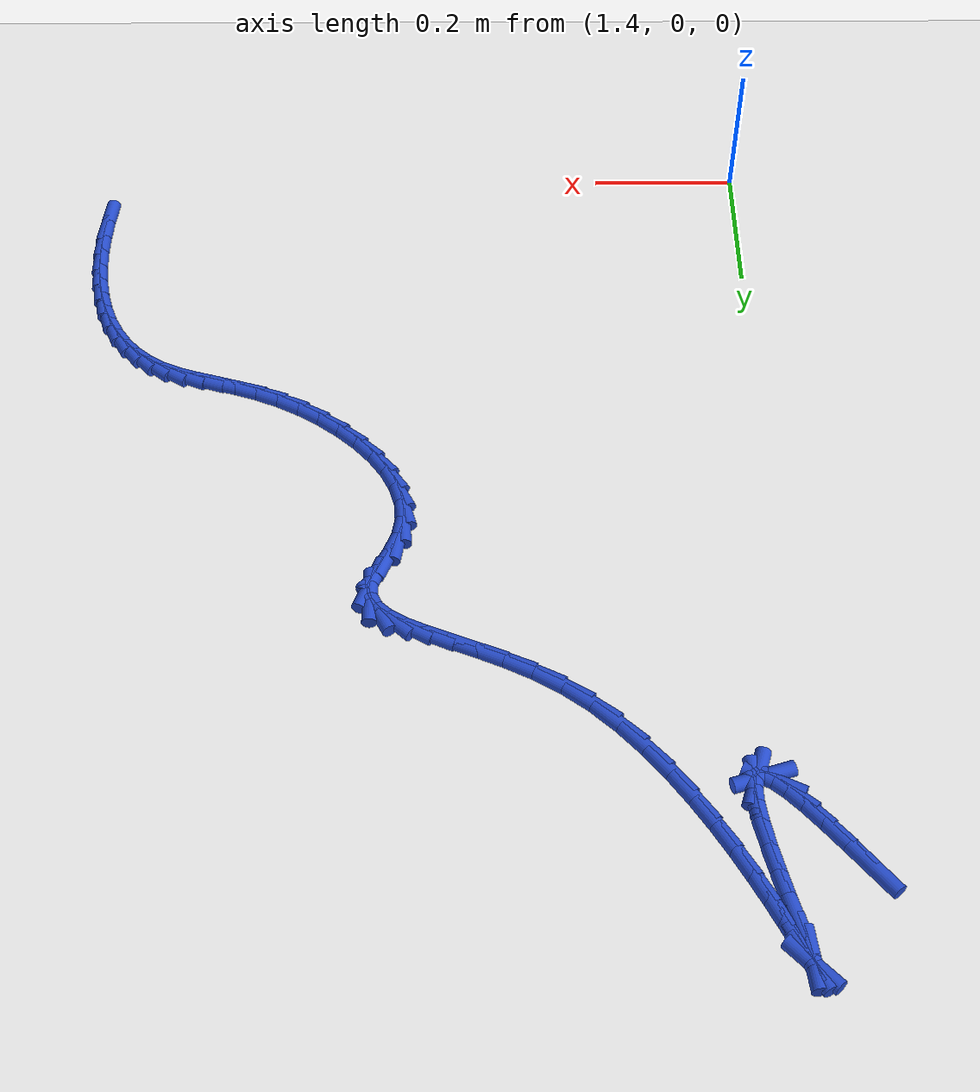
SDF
<sdf version="1.6">
 <world name="default">
  <model name="ground_plane">
   <static>1</static>
   <link name="link">
    <collision name="collision">
     <geometry><plane><normal>0 0 1</normal><size>100 100</size></plane></geometry>
     <surface><friction><ode><mu>100</mu><mu2>50</mu2></ode></friction></surface>
    </collision>
    <visual name="visual">
     <cast_shadows>0</cast_shadows>
     <geometry><plane><normal>0 0 1</normal><size>100 100</size></plane></geometry>
     <material>
      <script><uri>file://media/materials/scripts/gazebo.material</uri><name>Gazebo/WhiteGlow</name></script>
     </material>
    </visual>
   </link>
  </model>
  <model name="line">
   <link name="link_77">
    <pose>1.334983740608417 1.160168199418877 0.01 0 1.57 -0.8938654774672163</pose>
    <collision name="collision">
     <geometry><cylinder><radius>0.01</radius><length>0.08</length></cylinder></geometry>
    </collision>
    <visual name="visual">
     <material>
      <script><name>Gazebo/Blue</name><uri>file://media/materials/scripts/gazebo.material</uri></script>
     </material>
     <geometry><cylinder><radius>0.01</radius><length>0.08</length></cylinder></geometry>
    </visual>
   </link>
   <link name="link_78">
    <pose>1.3599999915805292 1.129037884814639 0.01 0 1.57 -0.8829254231709356</pose>
    <collision name="collision">
     <geometry><cylinder><radius>0.01</radius><length>0.08</length></cylinder></geometry>
    </collision>
    <visual name="visual">
     <material>
      <script><name>Gazebo/Blue</name><uri>file://media/materials/scripts/gazebo.material</uri></script>
     </material>
     <geometry><cylinder><radius>0.01</radius><length>0.08</length></cylinder></geometry>
    </visual>
   </link>
   <link name="link_79">
    <pose>1.383357366746179 1.1006143909477075 0.01 0 1.57 -0.857568142804138</pose>
    <collision name="collision">
     <geometry><cylinder><radius>0.01</radius><length>0.08</length></cylinder></geometry>
    </collision>
    <visual name="visual">
     <material>
      <script><name>Gazebo/Blue</name><uri>file://media/materials/scripts/gazebo.material</uri></script>
     </material>
     <geometry><cylinder><radius>0.01</radius><length>0.08</length></cylinder></geometry>
    </visual>
   </link>
   <link name="link_80">
    <pose>1.404596042502791 1.076065476629322 0.01 0 1.57 -0.8075715201654636</pose>
    <collision name="collision">
     <geometry><cylinder><radius>0.01</radius><length>0.08</length></cylinder></geometry>
    </collision>
    <visual name="visual">
     <material>
      <script><name>Gazebo/Blue</name><uri>file://media/materials/scripts/gazebo.material</uri></script>
     </material>
     <geometry><cylinder><radius>0.01</radius><length>0.08</length></cylinder></geometry>
    </visual>
   </link>
   <link name="link_81">
    <pose>1.423256195247789 1.05655890067072 0.01 0 1.57 -0.7051605216147377</pose>
    <collision name="collision">
     <geometry><cylinder><radius>0.01</radius><length>0.08</length></cylinder></geometry>
    </collision>
    <visual name="visual">
     <material>
      <script><name>Gazebo/Blue</name><uri>file://media/materials/scripts/gazebo.material</uri></script>
     </material>
     <geometry><cylinder><radius>0.01</radius><length>0.08</length></cylinder></geometry>
    </visual>
   </link>
   <link name="link_82">
    <pose>1.438878001378597 1.0432624218831394 0.01 0 1.57 -0.45415405003523074</pose>
    <collision name="collision">
     <geometry><cylinder><radius>0.01</radius><length>0.08</length></cylinder></geometry>
    </collision>
    <visual name="visual">
     <material>
      <script><name>Gazebo/Blue</name><uri>file://media/materials/scripts/gazebo.material</uri></script>
     </material>
     <geometry><cylinder><radius>0.01</radius><length>0.08</length></cylinder></geometry>
    </visual>
   </link>
   <link name="link_83">
    <pose>1.4510016372926382 1.0373437990778185 0.01 0 1.57 0.3112559172856693</pose>
    <collision name="collision">
     <geometry><cylinder><radius>0.01</radius><length>0.08</length></cylinder></geometry>
    </collision>
    <visual name="visual">
     <material>
      <script><name>Gazebo/Blue</name><uri>file://media/materials/scripts/gazebo.material</uri></script>
     </material>
     <geometry><cylinder><radius>0.01</radius><length>0.08</length></cylinder></geometry>
    </visual>
   </link>
   <link name="link_84">
    <pose>1.4591672793873376 1.0399707910659954 0.01 0 1.57 1.2743879476308628</pose>
    <collision name="collision">
     <geometry><cylinder><radius>0.01</radius><length>0.08</length></cylinder></geometry>
    </collision>
    <visual name="visual">
     <material>
      <script><name>Gazebo/Blue</name><uri>file://media/materials/scripts/gazebo.material</uri></script>
     </material>
     <geometry><cylinder><radius>0.01</radius><length>0.08</length></cylinder></geometry>
    </visual>
   </link>
   <link name="link_85">
    <pose>1.462926775209172 1.0522806488531384 0.01 0 1.57 -1.546266087948672</pose>
    <collision name="collision">
     <geometry><cylinder><radius>0.01</radius><length>0.08</length></cylinder></geometry>
    </collision>
    <visual name="visual">
     <material>
      <script><name>Gazebo/Blue</name><uri>file://media/materials/scripts/gazebo.material</uri></script>
     </material>
     <geometry><cylinder><radius>0.01</radius><length>0.08</length></cylinder></geometry>
    </visual>
   </link>
   <link name="link_86">
    <pose>1.4623954131167838 1.0739378170585434 0.01 0 1.57 -1.4349839470519377</pose>
    <collision name="collision">
     <geometry><cylinder><radius>0.01</radius><length>0.08</length></cylinder></geometry>
    </collision>
    <visual name="visual">
     <material>
      <script><name>Gazebo/Blue</name><uri>file://media/materials/scripts/gazebo.material</uri></script>
     </material>
     <geometry><cylinder><radius>0.01</radius><length>0.08</length></cylinder></geometry>
    </visual>
   </link>
   <link name="link_87">
    <pose>1.4584910908282076 1.1025087591744887 0.01 0 1.57 -1.3816039340566884</pose>
    <collision name="collision">
     <geometry><cylinder><radius>0.01</radius><length>0.08</length></cylinder></geometry>
    </collision>
    <visual name="visual">
     <material>
      <script><name>Gazebo/Blue</name><uri>file://media/materials/scripts/gazebo.material</uri></script>
     </material>
     <geometry><cylinder><radius>0.01</radius><length>0.08</length></cylinder></geometry>
    </visual>
   </link>
   <link name="link_88">
    <pose>1.452193095891266 1.1353994687176887 0.01 0 1.57 -1.3515815274458498</pose>
    <collision name="collision">
     <geometry><cylinder><radius>0.01</radius><length>0.08</length></cylinder></geometry>
    </collision>
    <visual name="visual">
     <material>
      <script><name>Gazebo/Blue</name><uri>file://media/materials/scripts/gazebo.material</uri></script>
     </material>
     <geometry><cylinder><radius>0.01</radius><length>0.08</length></cylinder></geometry>
    </visual>
   </link>
   <link name="link_89">
    <pose>1.444480715853782 1.1700159392048584 0.01 0 1.57 -1.3339096453010906</pose>
    <collision name="collision">
     <geometry><cylinder><radius>0.01</radius><length>0.08</length></cylinder></geometry>
    </collision>
    <visual name="visual">
     <material>
      <script><name>Gazebo/Blue</name><uri>file://media/materials/scripts/gazebo.material</uri></script>
     </material>
     <geometry><cylinder><radius>0.01</radius><length>0.08</length></cylinder></geometry>
    </visual>
   </link>
   <link name="link_90">
    <pose>1.4363332382635792 1.203764164152712 0.01 0 1.57 -1.324829856288692</pose>
    <collision name="collision">
     <geometry><cylinder><radius>0.01</radius><length>0.08</length></cylinder></geometry>
    </collision>
    <visual name="visual">
     <material>
      <script><name>Gazebo/Blue</name><uri>file://media/materials/scripts/gazebo.material</uri></script>
     </material>
     <geometry><cylinder><radius>0.01</radius><length>0.08</length></cylinder></geometry>
    </visual>
   </link>
   <link name="link_91">
    <pose>1.4287299506684803 1.2340501370779644 0.01 0 1.57 -1.3249484702236212</pose>
    <collision name="collision">
     <geometry><cylinder><radius>0.01</radius><length>0.08</length></cylinder></geometry>
    </collision>
    <visual name="visual">
     <material>
      <script><name>Gazebo/Blue</name><uri>file://media/materials/scripts/gazebo.material</uri></script>
     </material>
     <geometry><cylinder><radius>0.01</radius><length>0.08</length></cylinder></geometry>
    </visual>
   </link>
   <link name="link_92">
    <pose>1.4226501406163088 1.2582798514973312 0.01 0 1.57 -1.3448562903810788</pose>
    <collision name="collision">
     <geometry><cylinder><radius>0.01</radius><length>0.08</length></cylinder></geometry>
    </collision>
    <visual name="visual">
     <material>
      <script><name>Gazebo/Blue</name><uri>file://media/materials/scripts/gazebo.material</uri></script>
     </material>
     <geometry><cylinder><radius>0.01</radius><length>0.08</length></cylinder></geometry>
    </visual>
   </link>
   <link name="link_93">
    <pose>1.41905439842531 1.2739227042159738 0.01 0 1.57 -1.4678902873444195</pose>
    <collision name="collision">
     <geometry><cylinder><radius>0.01</radius><length>0.08</length></cylinder></geometry>
    </collision>
    <visual name="visual">
     <material>
      <script><name>Gazebo/Blue</name><uri>file://media/materials/scripts/gazebo.material</uri></script>
     </material>
     <geometry><cylinder><radius>0.01</radius><length>0.08</length></cylinder></geometry>
    </visual>
   </link>
   <link name="link_94">
    <pose>1.4184166185052722 1.2800985034511811 0.01 0 1.57 -0.8138092937138258</pose>
    <collision name="collision">
     <geometry><cylinder><radius>0.01</radius><length>0.08</length></cylinder></geometry>
    </collision>
    <visual name="visual">
     <material>
      <script><name>Gazebo/Blue</name><uri>file://media/materials/scripts/gazebo.material</uri></script>
     </material>
     <geometry><cylinder><radius>0.01</radius><length>0.08</length></cylinder></geometry>
    </visual>
   </link>
   <link name="link_95">
    <pose>1.4206902715590943 1.2776918415699912 0.01 0 1.57 -1.0988788445533533</pose>
    <collision name="collision">
     <geometry><cylinder><radius>0.01</radius><length>0.08</length></cylinder></geometry>
    </collision>
    <visual name="visual">
     <material>
      <script><name>Gazebo/Blue</name><uri>file://media/materials/scripts/gazebo.material</uri></script>
     </material>
     <geometry><cylinder><radius>0.01</radius><length>0.08</length></cylinder></geometry>
    </visual>
   </link>
   <link name="link_96">
    <pose>1.4258033760054671 1.2676736209732662 0.01 0 1.57 -1.1289356783679632</pose>
    <collision name="collision">
     <geometry><cylinder><radius>0.01</radius><length>0.08</length></cylinder></geometry>
    </collision>
    <visual name="visual">
     <material>
      <script><name>Gazebo/Blue</name><uri>file://media/materials/scripts/gazebo.material</uri></script>
     </material>
     <geometry><cylinder><radius>0.01</radius><length>0.08</length></cylinder></geometry>
    </visual>
   </link>
   <link name="link_97">
    <pose>1.4336839502630825 1.2510147440618697 0.01 0 1.57 -1.1284461497884888</pose>
    <collision name="collision">
     <geometry><cylinder><radius>0.01</radius><length>0.08</length></cylinder></geometry>
    </collision>
    <visual name="visual">
     <material>
      <script><name>Gazebo/Blue</name><uri>file://media/materials/scripts/gazebo.material</uri></script>
     </material>
     <geometry><cylinder><radius>0.01</radius><length>0.08</length></cylinder></geometry>
    </visual>
   </link>
   <link name="link_98">
    <pose>1.4442600127506298 1.228686113236663 0.01 0 1.57 -1.1164912222909837</pose>
    <collision name="collision">
     <geometry><cylinder><radius>0.01</radius><length>0.08</length></cylinder></geometry>
    </collision>
    <visual name="visual">
     <material>
      <script><name>Gazebo/Blue</name><uri>file://media/materials/scripts/gazebo.material</uri></script>
     </material>
     <geometry><cylinder><radius>0.01</radius><length>0.08</length></cylinder></geometry>
    </visual>
   </link>
   <link name="link_99">
    <pose>1.4574595818868015 1.2016586308985098 0.01 0 1.57 -1.0974837580558565</pose>
    <collision name="collision">
     <geometry><cylinder><radius>0.01</radius><length>0.08</length></cylinder></geometry>
    </collision>
    <visual name="visual">
     <material>
      <script><name>Gazebo/Blue</name><uri>file://media/materials/scripts/gazebo.material</uri></script>
     </material>
     <geometry><cylinder><radius>0.01</radius><length>0.08</length></cylinder></geometry>
    </visual>
   </link>
   <link name="link_100">
    <pose>1.4732106760902877 1.1709031994482717 0.01 0 1.57 -1.0725747733829336</pose>
    <collision name="collision">
     <geometry><cylinder><radius>0.01</radius><length>0.08</length></cylinder></geometry>
    </collision>
    <visual name="visual">
     <material>
      <script><name>Gazebo/Blue</name><uri>file://media/materials/scripts/gazebo.material</uri></script>
     </material>
     <geometry><cylinder><radius>0.01</radius><length>0.08</length></cylinder></geometry>
    </visual>
   </link>
   <link name="link_101">
    <pose>1.4914413137797786 1.1373907212868117 0.01 0 1.57 -1.0417219016563144</pose>
    <collision name="collision">
     <geometry><cylinder><radius>0.01</radius><length>0.08</length></cylinder></geometry>
    </collision>
    <visual name="visual">
     <material>
      <script><name>Gazebo/Blue</name><uri>file://media/materials/scripts/gazebo.material</uri></script>
     </material>
     <geometry><cylinder><radius>0.01</radius><length>0.08</length></cylinder></geometry>
    </visual>
   </link>
   <link name="link_102">
    <pose>1.5120795133739668 1.1020920988149914 0.01 0 1.57 -1.0042202652076195</pose>
    <collision name="collision">
     <geometry><cylinder><radius>0.01</radius><length>0.08</length></cylinder></geometry>
    </collision>
    <visual name="visual">
     <material>
      <script><name>Gazebo/Blue</name><uri>file://media/materials/scripts/gazebo.material</uri></script>
     </material>
     <geometry><cylinder><radius>0.01</radius><length>0.08</length></cylinder></geometry>
    </visual>
   </link>
   <link name="link_103">
    <pose>1.5350532932915426 1.0659782344336746 0.01 0 1.57 -0.9588277202321432</pose>
    <collision name="collision">
     <geometry><cylinder><radius>0.01</radius><length>0.08</length></cylinder></geometry>
    </collision>
    <visual name="visual">
     <material>
      <script><name>Gazebo/Blue</name><uri>file://media/materials/scripts/gazebo.material</uri></script>
     </material>
     <geometry><cylinder><radius>0.01</radius><length>0.08</length></cylinder></geometry>
    </visual>
   </link>
   <link name="link_104">
    <pose>1.5602906719511966 1.030020030543723 0.01 0 1.57 -0.9037402746825578</pose>
    <collision name="collision">
     <geometry><cylinder><radius>0.01</radius><length>0.08</length></cylinder></geometry>
    </collision>
    <visual name="visual">
     <material>
      <script><name>Gazebo/Blue</name><uri>file://media/materials/scripts/gazebo.material</uri></script>
     </material>
     <geometry><cylinder><radius>0.01</radius><length>0.08</length></cylinder></geometry>
    </visual>
   </link>
   <link name="link_105">
    <pose>1.5877196677716199 0.9951883895459992 0.01 0 1.57 -0.8365000814597771</pose>
    <collision name="collision">
     <geometry><cylinder><radius>0.01</radius><length>0.08</length></cylinder></geometry>
    </collision>
    <visual name="visual">
     <material>
      <script><name>Gazebo/Blue</name><uri>file://media/materials/scripts/gazebo.material</uri></script>
     </material>
     <geometry><cylinder><radius>0.01</radius><length>0.08</length></cylinder></geometry>
    </visual>
   </link>
   <link name="link_106">
    <pose>1.6172682991715035 0.9624542138413662 0.01 0 1.57 -0.753896811133605</pose>
    <collision name="collision">
     <geometry><cylinder><radius>0.01</radius><length>0.08</length></cylinder></geometry>
    </collision>
    <visual name="visual">
     <material>
      <script><name>Gazebo/Blue</name><uri>file://media/materials/scripts/gazebo.material</uri></script>
     </material>
     <geometry><cylinder><radius>0.01</radius><length>0.08</length></cylinder></geometry>
    </visual>
   </link>
   <link name="link_107">
    <pose>1.6488645845695382 0.9327884058306861 0.01 0 1.57 -0.6525016314642058</pose>
    <collision name="collision">
     <geometry><cylinder><radius>0.01</radius><length>0.08</length></cylinder></geometry>
    </collision>
    <visual name="visual">
     <material>
      <script><name>Gazebo/Blue</name><uri>file://media/materials/scripts/gazebo.material</uri></script>
     </material>
     <geometry><cylinder><radius>0.01</radius><length>0.08</length></cylinder></geometry>
    </visual>
   </link>
   <link name="link_108">
    <pose>1.6824255568625135 0.9071424774169573 0.01 0 1.57 -0.548873940726691</pose>
    <collision name="collision">
     <geometry><cylinder><radius>0.01</radius><length>0.08</length></cylinder></geometry>
    </collision>
    <visual name="visual">
     <material>
      <script><name>Gazebo/Blue</name><uri>file://media/materials/scripts/gazebo.material</uri></script>
     </material>
     <geometry><cylinder><radius>0.01</radius><length>0.08</length></cylinder></geometry>
    </visual>
   </link>
   <link name="link_109">
    <pose>1.717447199892542 0.8857247486121431 0.01 0 1.57 -0.4686728781884901</pose>
    <collision name="collision">
     <geometry><cylinder><radius>0.01</radius><length>0.08</length></cylinder></geometry>
    </collision>
    <visual name="visual">
     <material>
      <script><name>Gazebo/Blue</name><uri>file://media/materials/scripts/gazebo.material</uri></script>
     </material>
     <geometry><cylinder><radius>0.01</radius><length>0.08</length></cylinder></geometry>
    </visual>
   </link>
   <link name="link_110">
    <pose>1.752881993361085 0.8677842025870831 0.01 0 1.57 -0.4140616374618175</pose>
    <collision name="collision">
     <geometry><cylinder><radius>0.01</radius><length>0.08</length></cylinder></geometry>
    </collision>
    <visual name="visual">
     <material>
      <script><name>Gazebo/Blue</name><uri>file://media/materials/scripts/gazebo.material</uri></script>
     </material>
     <geometry><cylinder><radius>0.01</radius><length>0.08</length></cylinder></geometry>
    </visual>
   </link>
   <link name="link_111">
    <pose>1.787646438991327 0.8525063179365703 0.01 0 1.57 -0.3863815102034831</pose>
    <collision name="collision">
     <geometry><cylinder><radius>0.01</radius><length>0.08</length></cylinder></geometry>
    </collision>
    <visual name="visual">
     <material>
      <script><name>Gazebo/Blue</name><uri>file://media/materials/scripts/gazebo.material</uri></script>
     </material>
     <geometry><cylinder><radius>0.01</radius><length>0.08</length></cylinder></geometry>
    </visual>
   </link>
   <link name="link_112">
    <pose>1.8206570385064496 0.8390765732553955 0.01 0 1.57 -0.38980893259308746</pose>
    <collision name="collision">
     <geometry><cylinder><radius>0.01</radius><length>0.08</length></cylinder></geometry>
    </collision>
    <visual name="visual">
     <material>
      <script><name>Gazebo/Blue</name><uri>file://media/materials/scripts/gazebo.material</uri></script>
     </material>
     <geometry><cylinder><radius>0.01</radius><length>0.08</length></cylinder></geometry>
    </visual>
   </link>
   <link name="link_113">
    <pose>1.8508302936296381 0.8266804471383515 0.01 0 1.57 -0.43430692619115957</pose>
    <collision name="collision">
     <geometry><cylinder><radius>0.01</radius><length>0.08</length></cylinder></geometry>
    </collision>
    <visual name="visual">
     <material>
      <script><name>Gazebo/Blue</name><uri>file://media/materials/scripts/gazebo.material</uri></script>
     </material>
     <geometry><cylinder><radius>0.01</radius><length>0.08</length></cylinder></geometry>
    </visual>
   </link>
   <link name="link_114">
    <pose>1.8770827060840756 0.8145034181802303 0.01 0 1.57 -0.541236139267824</pose>
    <collision name="collision">
     <geometry><cylinder><radius>0.01</radius><length>0.08</length></cylinder></geometry>
    </collision>
    <visual name="visual">
     <material>
      <script><name>Gazebo/Blue</name><uri>file://media/materials/scripts/gazebo.material</uri></script>
     </material>
     <geometry><cylinder><radius>0.01</radius><length>0.08</length></cylinder></geometry>
    </visual>
   </link>
   <link name="link_115">
    <pose>1.898330777592945 0.8017309649758235 0.01 0 1.57 -0.752085823594382</pose>
    <collision name="collision">
     <geometry><cylinder><radius>0.01</radius><length>0.08</length></cylinder></geometry>
    </collision>
    <visual name="visual">
     <material>
      <script><name>Gazebo/Blue</name><uri>file://media/materials/scripts/gazebo.material</uri></script>
     </material>
     <geometry><cylinder><radius>0.01</radius><length>0.08</length></cylinder></geometry>
    </visual>
   </link>
   <link name="link_116">
    <pose>1.91349100987943 0.7875485661199235 0.01 0 1.57 -1.1176642301116797</pose>
    <collision name="collision">
     <geometry><cylinder><radius>0.01</radius><length>0.08</length></cylinder></geometry>
    </collision>
    <visual name="visual">
     <material>
      <script><name>Gazebo/Blue</name><uri>file://media/materials/scripts/gazebo.material</uri></script>
     </material>
     <geometry><cylinder><radius>0.01</radius><length>0.08</length></cylinder></geometry>
    </visual>
   </link>
   <link name="link_117">
    <pose>1.9214799046667146 0.7711417002073225 0.01 0 1.57 1.5571212058346782</pose>
    <collision name="collision">
     <geometry><cylinder><radius>0.01</radius><length>0.08</length></cylinder></geometry>
    </collision>
    <visual name="visual">
     <material>
      <script><name>Gazebo/Blue</name><uri>file://media/materials/scripts/gazebo.material</uri></script>
     </material>
     <geometry><cylinder><radius>0.01</radius><length>0.08</length></cylinder></geometry>
    </visual>
   </link>
   <link name="link_118">
    <pose>1.9212139636779815 0.7516958458328118 0.01 0 1.57 1.1979619123156091</pose>
    <collision name="collision">
     <geometry><cylinder><radius>0.01</radius><length>0.08</length></cylinder></geometry>
    </collision>
    <visual name="visual">
     <material>
      <script><name>Gazebo/Blue</name><uri>file://media/materials/scripts/gazebo.material</uri></script>
     </material>
     <geometry><cylinder><radius>0.01</radius><length>0.08</length></cylinder></geometry>
    </visual>
   </link>
   <link name="link_119">
    <pose>1.912165964371749 0.7285627305982585 0.01 0 1.57 1.0881322022794016</pose>
    <collision name="collision">
     <geometry><cylinder><radius>0.01</radius><length>0.08</length></cylinder></geometry>
    </collision>
    <visual name="visual">
     <material>
      <script><name>Gazebo/Blue</name><uri>file://media/materials/scripts/gazebo.material</uri></script>
     </material>
     <geometry><cylinder><radius>0.01</radius><length>0.08</length></cylinder></geometry>
    </visual>
   </link>
   <link name="link_120">
    <pose>1.8985083249878434 0.7024986204735932 0.01 0 1.57 1.1678103240205606</pose>
    <collision name="collision">
     <geometry><cylinder><radius>0.01</radius><length>0.08</length></cylinder></geometry>
    </collision>
    <visual name="visual">
     <material>
      <script><name>Gazebo/Blue</name><uri>file://media/materials/scripts/gazebo.material</uri></script>
     </material>
     <geometry><cylinder><radius>0.01</radius><length>0.08</length></cylinder></geometry>
    </visual>
   </link>
   <link name="link_121">
    <pose>1.8867701281460565 0.6749646851924828 0.01 0 1.57 1.3894018344365118</pose>
    <collision name="collision">
     <geometry><cylinder><radius>0.01</radius><length>0.08</length></cylinder></geometry>
    </collision>
    <visual name="visual">
     <material>
      <script><name>Gazebo/Blue</name><uri>file://media/materials/scripts/gazebo.material</uri></script>
     </material>
     <geometry><cylinder><radius>0.01</radius><length>0.08</length></cylinder></geometry>
    </visual>
   </link>
   <link name="link_122">
    <pose>1.8816657152012366 0.6471341565588232 0.01 0 1.57 -1.5145938692693826</pose>
    <collision name="collision">
     <geometry><cylinder><radius>0.01</radius><length>0.08</length></cylinder></geometry>
    </collision>
    <visual name="visual">
     <material>
      <script><name>Gazebo/Blue</name><uri>file://media/materials/scripts/gazebo.material</uri></script>
     </material>
     <geometry><cylinder><radius>0.01</radius><length>0.08</length></cylinder></geometry>
    </visual>
   </link>
   <link name="link_123">
    <pose>1.8832243691596482 0.6194305192787838 0.01 0 1.57 -1.3019745295882572</pose>
    <collision name="collision">
     <geometry><cylinder><radius>0.01</radius><length>0.08</length></cylinder></geometry>
    </collision>
    <visual name="visual">
     <material>
      <script><name>Gazebo/Blue</name><uri>file://media/materials/scripts/gazebo.material</uri></script>
     </material>
     <geometry><cylinder><radius>0.01</radius><length>0.08</length></cylinder></geometry>
    </visual>
   </link>
   <link name="link_124">
    <pose>1.890737360260286 0.5921591543148498 0.01 0 1.57 -1.1225899354483218</pose>
    <collision name="collision">
     <geometry><cylinder><radius>0.01</radius><length>0.08</length></cylinder></geometry>
    </collision>
    <visual name="visual">
     <material>
      <script><name>Gazebo/Blue</name><uri>file://media/materials/scripts/gazebo.material</uri></script>
     </material>
     <geometry><cylinder><radius>0.01</radius><length>0.08</length></cylinder></geometry>
    </visual>
   </link>
   <link name="link_125">
    <pose>1.9034959587421432 0.5656254426295045 0.01 0 1.57 -0.9746447131415491</pose>
    <collision name="collision">
     <geometry><cylinder><radius>0.01</radius><length>0.08</length></cylinder></geometry>
    </collision>
    <visual name="visual">
     <material>
      <script><name>Gazebo/Blue</name><uri>file://media/materials/scripts/gazebo.material</uri></script>
     </material>
     <geometry><cylinder><radius>0.01</radius><length>0.08</length></cylinder></geometry>
    </visual>
   </link>
   <link name="link_126">
    <pose>1.920791434844214 0.5401347651852334 0.01 0 1.57 -0.8519863973351547</pose>
    <collision name="collision">
     <geometry><cylinder><radius>0.01</radius><length>0.08</length></cylinder></geometry>
    </collision>
    <visual name="visual">
     <material>
      <script><name>Gazebo/Blue</name><uri>file://media/materials/scripts/gazebo.material</uri></script>
     </material>
     <geometry><cylinder><radius>0.01</radius><length>0.08</length></cylinder></geometry>
    </visual>
   </link>
   <link name="link_127">
    <pose>1.9419150588054925 0.515992502944521 0.01 0 1.57 -0.7478699029176176</pose>
    <collision name="collision">
     <geometry><cylinder><radius>0.01</radius><length>0.08</length></cylinder></geometry>
    </collision>
    <visual name="visual">
     <material>
      <script><name>Gazebo/Blue</name><uri>file://media/materials/scripts/gazebo.material</uri></script>
     </material>
     <geometry><cylinder><radius>0.01</radius><length>0.08</length></cylinder></geometry>
    </visual>
   </link>
   <link name="link_128">
    <pose>1.9661581008649727 0.493504036869852 0.01 0 1.57 -0.6563180576500398</pose>
    <collision name="collision">
     <geometry><cylinder><radius>0.01</radius><length>0.08</length></cylinder></geometry>
    </collision>
    <visual name="visual">
     <material>
      <script><name>Gazebo/Blue</name><uri>file://media/materials/scripts/gazebo.material</uri></script>
     </material>
     <geometry><cylinder><radius>0.01</radius><length>0.08</length></cylinder></geometry>
    </visual>
   </link>
   <link name="link_129">
    <pose>1.992811831261648 0.4729747479237108 0.01 0 1.57 -0.5722371326046714</pose>
    <collision name="collision">
     <geometry><cylinder><radius>0.01</radius><length>0.08</length></cylinder></geometry>
    </collision>
    <visual name="visual">
     <material>
      <script><name>Gazebo/Blue</name><uri>file://media/materials/scripts/gazebo.material</uri></script>
     </material>
     <geometry><cylinder><radius>0.01</radius><length>0.08</length></cylinder></geometry>
    </visual>
   </link>
   <link name="link_130">
    <pose>2.0211675202345125 0.4547100170685823 0.01 0 1.57 -0.49107175407568276</pose>
    <collision name="collision">
     <geometry><cylinder><radius>0.01</radius><length>0.08</length></cylinder></geometry>
    </collision>
    <visual name="visual">
     <material>
      <script><name>Gazebo/Blue</name><uri>file://media/materials/scripts/gazebo.material</uri></script>
     </material>
     <geometry><cylinder><radius>0.01</radius><length>0.08</length></cylinder></geometry>
    </visual>
   </link>
   <link name="link_131">
    <pose>2.0505164380225605 0.43901522526695086 0.01 0 1.57 -0.40844891671147215</pose>
    <collision name="collision">
     <geometry><cylinder><radius>0.01</radius><length>0.08</length></cylinder></geometry>
    </collision>
    <visual name="visual">
     <material>
      <script><name>Gazebo/Blue</name><uri>file://media/materials/scripts/gazebo.material</uri></script>
     </material>
     <geometry><cylinder><radius>0.01</radius><length>0.08</length></cylinder></geometry>
    </visual>
   </link>
   <link name="link_132">
    <pose>2.0801509406933936 0.426189757577819 0.01 0 1.57 -0.33332219453444933</pose>
    <collision name="collision">
     <geometry><cylinder><radius>0.01</radius><length>0.08</length></cylinder></geometry>
    </collision>
    <visual name="visual">
     <material>
      <script><name>Gazebo/Blue</name><uri>file://media/materials/scripts/gazebo.material</uri></script>
     </material>
     <geometry><cylinder><radius>0.01</radius><length>0.08</length></cylinder></geometry>
    </visual>
   </link>
   <link name="link_133">
    <pose>2.109451833720718 0.41604458486842844 0.01 0 1.57 -0.28971150850230104</pose>
    <collision name="collision">
     <geometry><cylinder><radius>0.01</radius><length>0.08</length></cylinder></geometry>
    </collision>
    <visual name="visual">
     <material>
      <script><name>Gazebo/Blue</name><uri>file://media/materials/scripts/gazebo.material</uri></script>
     </material>
     <geometry><cylinder><radius>0.01</radius><length>0.08</length></cylinder></geometry>
    </visual>
   </link>
   <link name="link_134">
    <pose>2.1379524188636814 0.407548599429377 0.01 0 1.57 -0.284259141049352</pose>
    <collision name="collision">
     <geometry><cylinder><radius>0.01</radius><length>0.08</length></cylinder></geometry>
    </collision>
    <visual name="visual">
     <material>
      <script><name>Gazebo/Blue</name><uri>file://media/materials/scripts/gazebo.material</uri></script>
     </material>
     <geometry><cylinder><radius>0.01</radius><length>0.08</length></cylinder></geometry>
    </visual>
   </link>
   <link name="link_135">
    <pose>2.1652010969664146 0.39958731698927785 0.01 0 1.57 -0.32266652460426937</pose>
    <collision name="collision">
     <geometry><cylinder><radius>0.01</radius><length>0.08</length></cylinder></geometry>
    </collision>
    <visual name="visual">
     <material>
      <script><name>Gazebo/Blue</name><uri>file://media/materials/scripts/gazebo.material</uri></script>
     </material>
     <geometry><cylinder><radius>0.01</radius><length>0.08</length></cylinder></geometry>
    </visual>
   </link>
   <link name="link_136">
    <pose>2.1907462688730495 0.39104625327674386 0.01 0 1.57 -0.412487993814009</pose>
    <collision name="collision">
     <geometry><cylinder><radius>0.01</radius><length>0.08</length></cylinder></geometry>
    </collision>
    <visual name="visual">
     <material>
      <script><name>Gazebo/Blue</name><uri>file://media/materials/scripts/gazebo.material</uri></script>
     </material>
     <geometry><cylinder><radius>0.01</radius><length>0.08</length></cylinder></geometry>
    </visual>
   </link>
   <link name="link_137">
    <pose>2.2141363402981353 0.38081093580132186 0.01 0 1.57 -0.5500711075215861</pose>
    <collision name="collision">
     <geometry><cylinder><radius>0.01</radius><length>0.08</length></cylinder></geometry>
    </collision>
    <visual name="visual">
     <material>
      <script><name>Gazebo/Blue</name><uri>file://media/materials/scripts/gazebo.material</uri></script>
     </material>
     <geometry><cylinder><radius>0.01</radius><length>0.08</length></cylinder></geometry>
    </visual>
   </link>
   <link name="link_138">
    <pose>2.235018531565391 0.36800591233679275 0.01 0 1.57 -0.6974706043684646</pose>
    <collision name="collision">
     <geometry><cylinder><radius>0.01</radius><length>0.08</length></cylinder></geometry>
    </collision>
    <visual name="visual">
     <material>
      <script><name>Gazebo/Blue</name><uri>file://media/materials/scripts/gazebo.material</uri></script>
     </material>
     <geometry><cylinder><radius>0.01</radius><length>0.08</length></cylinder></geometry>
    </visual>
   </link>
   <link name="link_139">
    <pose>2.2533927389563067 0.3526088099872674 0.01 0 1.57 -0.8409159169313559</pose>
    <collision name="collision">
     <geometry><cylinder><radius>0.01</radius><length>0.08</length></cylinder></geometry>
    </collision>
    <visual name="visual">
     <material>
      <script><name>Gazebo/Blue</name><uri>file://media/materials/scripts/gazebo.material</uri></script>
     </material>
     <geometry><cylinder><radius>0.01</radius><length>0.08</length></cylinder></geometry>
    </visual>
   </link>
   <link name="link_140">
    <pose>2.2693375071092 0.3347874964618471 0.01 0 1.57 -0.9756295638382885</pose>
    <collision name="collision">
     <geometry><cylinder><radius>0.01</radius><length>0.08</length></cylinder></geometry>
    </collision>
    <visual name="visual">
     <material>
      <script><name>Gazebo/Blue</name><uri>file://media/materials/scripts/gazebo.material</uri></script>
     </material>
     <geometry><cylinder><radius>0.01</radius><length>0.08</length></cylinder></geometry>
    </visual>
   </link>
   <link name="link_141">
    <pose>2.282931380662389 0.31470983946963205 0.01 0 1.57 -1.0985796200159632</pose>
    <collision name="collision">
     <geometry><cylinder><radius>0.01</radius><length>0.08</length></cylinder></geometry>
    </collision>
    <visual name="visual">
     <material>
      <script><name>Gazebo/Blue</name><uri>file://media/materials/scripts/gazebo.material</uri></script>
     </material>
     <geometry><cylinder><radius>0.01</radius><length>0.08</length></cylinder></geometry>
    </visual>
   </link>
   <link name="link_142">
    <pose>2.29425290425419 0.2925437067197232 0.01 0 1.57 -1.2085654110917987</pose>
    <collision name="collision">
     <geometry><cylinder><radius>0.01</radius><length>0.08</length></cylinder></geometry>
    </collision>
    <visual name="visual">
     <material>
      <script><name>Gazebo/Blue</name><uri>file://media/materials/scripts/gazebo.material</uri></script>
     </material>
     <geometry><cylinder><radius>0.01</radius><length>0.08</length></cylinder></geometry>
    </visual>
   </link>
   <link name="link_143">
    <pose>2.3033806225229188 0.2684569659212214 0.01 0 1.57 -1.3057936886938102</pose>
    <collision name="collision">
     <geometry><cylinder><radius>0.01</radius><length>0.08</length></cylinder></geometry>
    </collision>
    <visual name="visual">
     <material>
      <script><name>Gazebo/Blue</name><uri>file://media/materials/scripts/gazebo.material</uri></script>
     </material>
     <geometry><cylinder><radius>0.01</radius><length>0.08</length></cylinder></geometry>
    </visual>
   </link>
   <link name="link_144">
    <pose>2.310393080106894 0.24261748478322753 0.01 0 1.57 -1.3913136339162104</pose>
    <collision name="collision">
     <geometry><cylinder><radius>0.01</radius><length>0.08</length></cylinder></geometry>
    </collision>
    <visual name="visual">
     <material>
      <script><name>Gazebo/Blue</name><uri>file://media/materials/scripts/gazebo.material</uri></script>
     </material>
     <geometry><cylinder><radius>0.01</radius><length>0.08</length></cylinder></geometry>
    </visual>
   </link>
   <link name="link_145">
    <pose>2.315368821644433 0.21519313101484255 0.01 0 1.57 -1.4665491203354557</pose>
    <collision name="collision">
     <geometry><cylinder><radius>0.01</radius><length>0.08</length></cylinder></geometry>
    </collision>
    <visual name="visual">
     <material>
      <script><name>Gazebo/Blue</name><uri>file://media/materials/scripts/gazebo.material</uri></script>
     </material>
     <geometry><cylinder><radius>0.01</radius><length>0.08</length></cylinder></geometry>
    </visual>
   </link>
   <link name="link_146">
    <pose>2.318386391773851 0.18635177232516711 0.01 0 1.57 -1.5329969714596485</pose>
    <collision name="collision">
     <geometry><cylinder><radius>0.01</radius><length>0.08</length></cylinder></geometry>
    </collision>
    <visual name="visual">
     <material>
      <script><name>Gazebo/Blue</name><uri>file://media/materials/scripts/gazebo.material</uri></script>
     </material>
     <geometry><cylinder><radius>0.01</radius><length>0.08</length></cylinder></geometry>
    </visual>
   </link>
   <link name="link_147">
    <pose>2.3195243351334667 0.15626127642330212 0.01 0 1.57 1.5495258356486863</pose>
    <collision name="collision">
     <geometry><cylinder><radius>0.01</radius><length>0.08</length></cylinder></geometry>
    </collision>
    <visual name="visual">
     <material>
      <script><name>Gazebo/Blue</name><uri>file://media/materials/scripts/gazebo.material</uri></script>
     </material>
     <geometry><cylinder><radius>0.01</radius><length>0.08</length></cylinder></geometry>
    </visual>
   </link>
   <link name="link_148">
    <pose>2.3188611963615955 0.12508951101834834 0.01 0 1.57 1.4965784085532094</pose>
    <collision name="collision">
     <geometry><cylinder><radius>0.01</radius><length>0.08</length></cylinder></geometry>
    </collision>
    <visual name="visual">
     <material>
      <script><name>Gazebo/Blue</name><uri>file://media/materials/scripts/gazebo.material</uri></script>
     </material>
     <geometry><cylinder><radius>0.01</radius><length>0.08</length></cylinder></geometry>
    </visual>
   </link>
   <link name="link_149">
    <pose>2.3164755200965574 0.09300434381940671 0.01 0 1.57 1.4486663129322248</pose>
    <collision name="collision">
     <geometry><cylinder><radius>0.01</radius><length>0.08</length></cylinder></geometry>
    </collision>
    <visual name="visual">
     <material>
      <script><name>Gazebo/Blue</name><uri>file://media/materials/scripts/gazebo.material</uri></script>
     </material>
     <geometry><cylinder><radius>0.01</radius><length>0.08</length></cylinder></geometry>
    </visual>
   </link>
  </model>
 </world>
</sdf>
